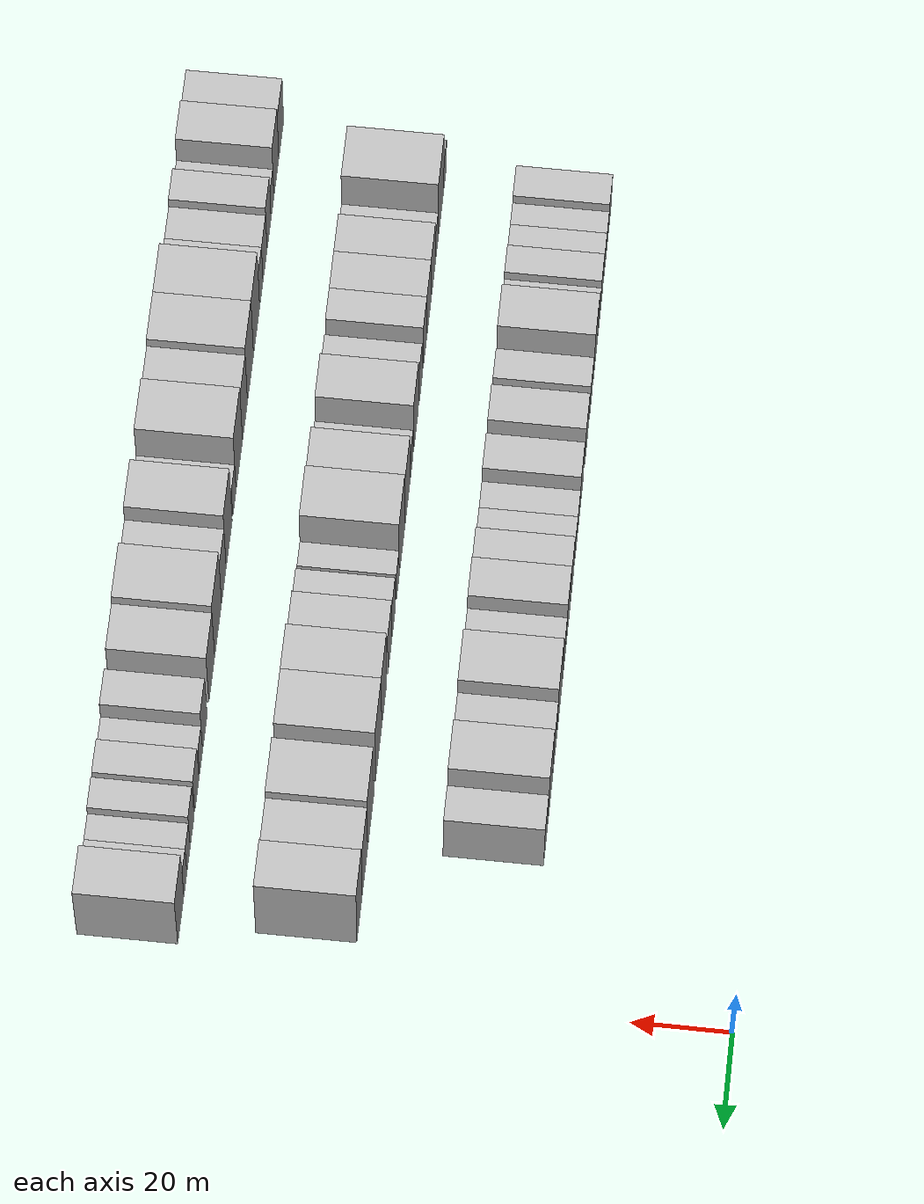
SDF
<sdf version="1.6">
 <world name="default">
  <model name="building_20">
   <static>1</static>
   <pose>50.0000 -176.2270 0 0.000000 0.000000 0.000000</pose>
   <link name="link">
    <pose>0 0 7.50 0 0 0</pose>
    <collision name="collision"><geometry><box><size>20.0000 7.1143 15.0000</size></box></geometry></collision>
    <visual name="visual">
     <cast_shadows>0</cast_shadows>
     <geometry><box><size>20.0000 7.1143 15.0000</size></box></geometry>
     <material>
      <script>
       <uri>model://HANNAS_wall/materials/scripts</uri>
       <uri>model://HANNAS_wall/materials/textures</uri>
       <name>vrc/HANNAS_wall</name>
      </script>
     </material>
    </visual>
   </link>
  </model>
  <model name="building_21">
   <static>1</static>
   <pose>50.0000 -170.1539 0 0.000000 0.000000 0.000000</pose>
   <link name="link">
    <pose>0 0 6.00 0 0 0</pose>
    <collision name="collision"><geometry><box><size>20.0000 5.0317 12.0000</size></box></geometry></collision>
    <visual name="visual">
     <cast_shadows>0</cast_shadows>
     <geometry><box><size>20.0000 5.0317 12.0000</size></box></geometry>
     <material>
      <script>
       <uri>model://HANNAS_wall/materials/scripts</uri>
       <uri>model://HANNAS_wall/materials/textures</uri>
       <name>vrc/HANNAS_wall</name>
      </script>
     </material>
    </visual>
   </link>
  </model>
  <model name="building_22">
   <static>1</static>
   <pose>50.0000 -164.9242 0 0.000000 0.000000 0.000000</pose>
   <link name="link">
    <pose>0 0 6.00 0 0 0</pose>
    <collision name="collision"><geometry><box><size>20.0000 5.4278 12.0000</size></box></geometry></collision>
    <visual name="visual">
     <cast_shadows>0</cast_shadows>
     <geometry><box><size>20.0000 5.4278 12.0000</size></box></geometry>
     <material>
      <script>
       <uri>model://HANNAS_wall/materials/scripts</uri>
       <uri>model://HANNAS_wall/materials/textures</uri>
       <name>vrc/HANNAS_wall</name>
      </script>
     </material>
    </visual>
   </link>
  </model>
  <model name="building_23">
   <static>1</static>
   <pose>50.0000 -158.0271 0 0.000000 0.000000 0.000000</pose>
   <link name="link">
    <pose>0 0 7.50 0 0 0</pose>
    <collision name="collision"><geometry><box><size>20.0000 6.3664 15.0000</size></box></geometry></collision>
    <visual name="visual">
     <cast_shadows>0</cast_shadows>
     <geometry><box><size>20.0000 6.3664 15.0000</size></box></geometry>
     <material>
      <script>
       <uri>model://HANNAS_wall/materials/scripts</uri>
       <uri>model://HANNAS_wall/materials/textures</uri>
       <name>vrc/HANNAS_wall</name>
      </script>
     </material>
    </visual>
   </link>
  </model>
  <model name="building_24">
   <static>1</static>
   <pose>50.0000 -151.8576 0 0.000000 0.000000 0.000000</pose>
   <link name="link">
    <pose>0 0 6.00 0 0 0</pose>
    <collision name="collision"><geometry><box><size>20.0000 5.9726 12.0000</size></box></geometry></collision>
    <visual name="visual">
     <cast_shadows>0</cast_shadows>
     <geometry><box><size>20.0000 5.9726 12.0000</size></box></geometry>
     <material>
      <script>
       <uri>model://HANNAS_wall/materials/scripts</uri>
       <uri>model://HANNAS_wall/materials/textures</uri>
       <name>vrc/HANNAS_wall</name>
      </script>
     </material>
    </visual>
   </link>
  </model>
  <model name="building_25">
   <static>1</static>
   <pose>50.0000 -144.0656 0 0.000000 0.000000 0.000000</pose>
   <link name="link">
    <pose>0 0 10.50 0 0 0</pose>
    <collision name="collision"><geometry><box><size>20.0000 9.6114 21.0000</size></box></geometry></collision>
    <visual name="visual">
     <cast_shadows>0</cast_shadows>
     <geometry><box><size>20.0000 9.6114 21.0000</size></box></geometry>
     <material>
      <script>
       <uri>model://HANNAS_wall/materials/scripts</uri>
       <uri>model://HANNAS_wall/materials/textures</uri>
       <name>vrc/HANNAS_wall</name>
      </script>
     </material>
    </visual>
   </link>
  </model>
  <model name="building_26">
   <static>1</static>
   <pose>50.0000 -133.8939 0 0.000000 0.000000 0.000000</pose>
   <link name="link">
    <pose>0 0 7.50 0 0 0</pose>
    <collision name="collision"><geometry><box><size>20.0000 6.7320 15.0000</size></box></geometry></collision>
    <visual name="visual">
     <cast_shadows>0</cast_shadows>
     <geometry><box><size>20.0000 6.7320 15.0000</size></box></geometry>
     <material>
      <script>
       <uri>model://HANNAS_wall/materials/scripts</uri>
       <uri>model://HANNAS_wall/materials/textures</uri>
       <name>vrc/HANNAS_wall</name>
      </script>
     </material>
    </visual>
   </link>
  </model>
  <model name="building_27">
   <static>1</static>
   <pose>50.0000 -123.4901 0 0.000000 0.000000 0.000000</pose>
   <link name="link">
    <pose>0 0 9.00 0 0 0</pose>
    <collision name="collision"><geometry><box><size>20.0000 8.0756 18.0000</size></box></geometry></collision>
    <visual name="visual">
     <cast_shadows>0</cast_shadows>
     <geometry><box><size>20.0000 8.0756 18.0000</size></box></geometry>
     <material>
      <script>
       <uri>model://HANNAS_wall/materials/scripts</uri>
       <uri>model://HANNAS_wall/materials/textures</uri>
       <name>vrc/HANNAS_wall</name>
      </script>
     </material>
    </visual>
   </link>
  </model>
  <model name="building_28">
   <static>1</static>
   <pose>50.0000 -112.4935 0 0.000000 0.000000 0.000000</pose>
   <link name="link">
    <pose>0 0 9.00 0 0 0</pose>
    <collision name="collision"><geometry><box><size>20.0000 7.9175 18.0000</size></box></geometry></collision>
    <visual name="visual">
     <cast_shadows>0</cast_shadows>
     <geometry><box><size>20.0000 7.9175 18.0000</size></box></geometry>
     <material>
      <script>
       <uri>model://HANNAS_wall/materials/scripts</uri>
       <uri>model://HANNAS_wall/materials/textures</uri>
       <name>vrc/HANNAS_wall</name>
      </script>
     </material>
    </visual>
   </link>
  </model>
  <model name="building_29">
   <static>1</static>
   <pose>50.0000 -105.5988 0 0.000000 0.000000 0.000000</pose>
   <link name="link">
    <pose>0 0 6.00 0 0 0</pose>
    <collision name="collision"><geometry><box><size>20.0000 5.8719 12.0000</size></box></geometry></collision>
    <visual name="visual">
     <cast_shadows>0</cast_shadows>
     <geometry><box><size>20.0000 5.8719 12.0000</size></box></geometry>
     <material>
      <script>
       <uri>model://HANNAS_wall/materials/scripts</uri>
       <uri>model://HANNAS_wall/materials/textures</uri>
       <name>vrc/HANNAS_wall</name>
      </script>
     </material>
    </visual>
   </link>
  </model>
  <model name="building_30">
   <static>1</static>
   <pose>50.0000 -99.9868 0 0.000000 0.000000 0.000000</pose>
   <link name="link">
    <pose>0 0 6.00 0 0 0</pose>
    <collision name="collision"><geometry><box><size>20.0000 5.3522 12.0000</size></box></geometry></collision>
    <visual name="visual">
     <cast_shadows>0</cast_shadows>
     <geometry><box><size>20.0000 5.3522 12.0000</size></box></geometry>
     <material>
      <script>
       <uri>model://HANNAS_wall/materials/scripts</uri>
       <uri>model://HANNAS_wall/materials/textures</uri>
       <name>vrc/HANNAS_wall</name>
      </script>
     </material>
    </visual>
   </link>
  </model>
  <model name="building_31">
   <static>1</static>
   <pose>50.0000 -91.3105 0 0.000000 0.000000 0.000000</pose>
   <link name="link">
    <pose>0 0 9.00 0 0 0</pose>
    <collision name="collision"><geometry><box><size>20.0000 8.0003 18.0000</size></box></geometry></collision>
    <visual name="visual">
     <cast_shadows>0</cast_shadows>
     <geometry><box><size>20.0000 8.0003 18.0000</size></box></geometry>
     <material>
      <script>
       <uri>model://HANNAS_wall/materials/scripts</uri>
       <uri>model://HANNAS_wall/materials/textures</uri>
       <name>vrc/HANNAS_wall</name>
      </script>
     </material>
    </visual>
   </link>
  </model>
  <model name="building_32">
   <static>1</static>
   <pose>50.0000 -83.0380 0 0.000000 0.000000 0.000000</pose>
   <link name="link">
    <pose>0 0 10.50 0 0 0</pose>
    <collision name="collision"><geometry><box><size>20.0000 8.5449 21.0000</size></box></geometry></collision>
    <visual name="visual">
     <cast_shadows>0</cast_shadows>
     <geometry><box><size>20.0000 8.5449 21.0000</size></box></geometry>
     <material>
      <script>
       <uri>model://HANNAS_wall/materials/scripts</uri>
       <uri>model://HANNAS_wall/materials/textures</uri>
       <name>vrc/HANNAS_wall</name>
      </script>
     </material>
    </visual>
   </link>
  </model>
  <model name="building_33">
   <static>1</static>
   <pose>50.0000 -75.3986 0 0.000000 0.000000 0.000000</pose>
   <link name="link">
    <pose>0 0 7.50 0 0 0</pose>
    <collision name="collision"><geometry><box><size>20.0000 6.7339 15.0000</size></box></geometry></collision>
    <visual name="visual">
     <cast_shadows>0</cast_shadows>
     <geometry><box><size>20.0000 6.7339 15.0000</size></box></geometry>
     <material>
      <script>
       <uri>model://HANNAS_wall/materials/scripts</uri>
       <uri>model://HANNAS_wall/materials/textures</uri>
       <name>vrc/HANNAS_wall</name>
      </script>
     </material>
    </visual>
   </link>
  </model>
  <model name="building_34">
   <static>1</static>
   <pose>50.0000 -64.4843 0 0.000000 0.000000 0.000000</pose>
   <link name="link">
    <pose>0 0 12.00 0 0 0</pose>
    <collision name="collision"><geometry><box><size>20.0000 11.0947 24.0000</size></box></geometry></collision>
    <visual name="visual">
     <cast_shadows>0</cast_shadows>
     <geometry><box><size>20.0000 11.0947 24.0000</size></box></geometry>
     <material>
      <script>
       <uri>model://HANNAS_wall/materials/scripts</uri>
       <uri>model://HANNAS_wall/materials/textures</uri>
       <name>vrc/HANNAS_wall</name>
      </script>
     </material>
    </visual>
   </link>
  </model>
  <model name="building_35">
   <static>1</static>
   <pose>50.0000 -54.6531 0 0.000000 0.000000 0.000000</pose>
   <link name="link">
    <pose>0 0 9.00 0 0 0</pose>
    <collision name="collision"><geometry><box><size>20.0000 8.5675 18.0000</size></box></geometry></collision>
    <visual name="visual">
     <cast_shadows>0</cast_shadows>
     <geometry><box><size>20.0000 8.5675 18.0000</size></box></geometry>
     <material>
      <script>
       <uri>model://HANNAS_wall/materials/scripts</uri>
       <uri>model://HANNAS_wall/materials/textures</uri>
       <name>vrc/HANNAS_wall</name>
      </script>
     </material>
    </visual>
   </link>
  </model>
  <model name="building_36">
   <static>1</static>
   <pose>50.0000 -45.1233 0 0.000000 0.000000 0.000000</pose>
   <link name="link">
    <pose>0 0 12.00 0 0 0</pose>
    <collision name="collision"><geometry><box><size>20.0000 10.4921 24.0000</size></box></geometry></collision>
    <visual name="visual">
     <cast_shadows>0</cast_shadows>
     <geometry><box><size>20.0000 10.4921 24.0000</size></box></geometry>
     <material>
      <script>
       <uri>model://HANNAS_wall/materials/scripts</uri>
       <uri>model://HANNAS_wall/materials/textures</uri>
       <name>vrc/HANNAS_wall</name>
      </script>
     </material>
    </visual>
   </link>
  </model>
  <model name="building_37">
   <static>1</static>
   <pose>50.0000 -35.1393 0 0.000000 0.000000 0.000000</pose>
   <link name="link">
    <pose>0 0 9.00 0 0 0</pose>
    <collision name="collision"><geometry><box><size>20.0000 7.4760 18.0000</size></box></geometry></collision>
    <visual name="visual">
     <cast_shadows>0</cast_shadows>
     <geometry><box><size>20.0000 7.4760 18.0000</size></box></geometry>
     <material>
      <script>
       <uri>model://HANNAS_wall/materials/scripts</uri>
       <uri>model://HANNAS_wall/materials/textures</uri>
       <name>vrc/HANNAS_wall</name>
      </script>
     </material>
    </visual>
   </link>
  </model>
  <model name="building_98">
   <static>1</static>
   <pose>85.0000 -183.1922 0 0.000000 0.000000 0.000000</pose>
   <link name="link">
    <pose>0 0 6.00 0 0 0</pose>
    <collision name="collision"><geometry><box><size>20.0000 5.4595 12.0000</size></box></geometry></collision>
    <visual name="visual">
     <cast_shadows>0</cast_shadows>
     <geometry><box><size>20.0000 5.4595 12.0000</size></box></geometry>
     <material>
      <script>
       <uri>model://HANNAS_wall/materials/scripts</uri>
       <uri>model://HANNAS_wall/materials/textures</uri>
       <name>vrc/HANNAS_wall</name>
      </script>
     </material>
    </visual>
   </link>
  </model>
  <model name="building_99">
   <static>1</static>
   <pose>85.0000 -174.5851 0 0.000000 0.000000 0.000000</pose>
   <link name="link">
    <pose>0 0 12.00 0 0 0</pose>
    <collision name="collision"><geometry><box><size>20.0000 11.7548 24.0000</size></box></geometry></collision>
    <visual name="visual">
     <cast_shadows>0</cast_shadows>
     <geometry><box><size>20.0000 11.7548 24.0000</size></box></geometry>
     <material>
      <script>
       <uri>model://HANNAS_wall/materials/scripts</uri>
       <uri>model://HANNAS_wall/materials/textures</uri>
       <name>vrc/HANNAS_wall</name>
      </script>
     </material>
    </visual>
   </link>
  </model>
  <model name="building_100">
   <static>1</static>
   <pose>85.0000 -165.9153 0 0.000000 0.000000 0.000000</pose>
   <link name="link">
    <pose>0 0 6.00 0 0 0</pose>
    <collision name="collision"><geometry><box><size>20.0000 5.5848 12.0000</size></box></geometry></collision>
    <visual name="visual">
     <cast_shadows>0</cast_shadows>
     <geometry><box><size>20.0000 5.5848 12.0000</size></box></geometry>
     <material>
      <script>
       <uri>model://HANNAS_wall/materials/scripts</uri>
       <uri>model://HANNAS_wall/materials/textures</uri>
       <name>vrc/HANNAS_wall</name>
      </script>
     </material>
    </visual>
   </link>
  </model>
  <model name="building_101">
   <static>1</static>
   <pose>85.0000 -158.8045 0 0.000000 0.000000 0.000000</pose>
   <link name="link">
    <pose>0 0 9.00 0 0 0</pose>
    <collision name="collision"><geometry><box><size>20.0000 8.6369 18.0000</size></box></geometry></collision>
    <visual name="visual">
     <cast_shadows>0</cast_shadows>
     <geometry><box><size>20.0000 8.6369 18.0000</size></box></geometry>
     <material>
      <script>
       <uri>model://HANNAS_wall/materials/scripts</uri>
       <uri>model://HANNAS_wall/materials/textures</uri>
       <name>vrc/HANNAS_wall</name>
      </script>
     </material>
    </visual>
   </link>
  </model>
  <model name="building_102">
   <static>1</static>
   <pose>85.0000 -150.2253 0 0.000000 0.000000 0.000000</pose>
   <link name="link">
    <pose>0 0 9.00 0 0 0</pose>
    <collision name="collision"><geometry><box><size>20.0000 8.5214 18.0000</size></box></geometry></collision>
    <visual name="visual">
     <cast_shadows>0</cast_shadows>
     <geometry><box><size>20.0000 8.5214 18.0000</size></box></geometry>
     <material>
      <script>
       <uri>model://HANNAS_wall/materials/scripts</uri>
       <uri>model://HANNAS_wall/materials/textures</uri>
       <name>vrc/HANNAS_wall</name>
      </script>
     </material>
    </visual>
   </link>
  </model>
  <model name="building_103">
   <static>1</static>
   <pose>85.0000 -142.3640 0 0.000000 0.000000 0.000000</pose>
   <link name="link">
    <pose>0 0 9.00 0 0 0</pose>
    <collision name="collision"><geometry><box><size>20.0000 7.2013 18.0000</size></box></geometry></collision>
    <visual name="visual">
     <cast_shadows>0</cast_shadows>
     <geometry><box><size>20.0000 7.2013 18.0000</size></box></geometry>
     <material>
      <script>
       <uri>model://HANNAS_wall/materials/scripts</uri>
       <uri>model://HANNAS_wall/materials/textures</uri>
       <name>vrc/HANNAS_wall</name>
      </script>
     </material>
    </visual>
   </link>
  </model>
  <model name="building_104">
   <static>1</static>
   <pose>85.0000 -133.5489 0 0.000000 0.000000 0.000000</pose>
   <link name="link">
    <pose>0 0 7.50 0 0 0</pose>
    <collision name="collision"><geometry><box><size>20.0000 6.4290 15.0000</size></box></geometry></collision>
    <visual name="visual">
     <cast_shadows>0</cast_shadows>
     <geometry><box><size>20.0000 6.4290 15.0000</size></box></geometry>
     <material>
      <script>
       <uri>model://HANNAS_wall/materials/scripts</uri>
       <uri>model://HANNAS_wall/materials/textures</uri>
       <name>vrc/HANNAS_wall</name>
      </script>
     </material>
    </visual>
   </link>
  </model>
  <model name="building_105">
   <static>1</static>
   <pose>85.0000 -124.4201 0 0.000000 0.000000 0.000000</pose>
   <link name="link">
    <pose>0 0 10.50 0 0 0</pose>
    <collision name="collision"><geometry><box><size>20.0000 9.8286 21.0000</size></box></geometry></collision>
    <visual name="visual">
     <cast_shadows>0</cast_shadows>
     <geometry><box><size>20.0000 9.8286 21.0000</size></box></geometry>
     <material>
      <script>
       <uri>model://HANNAS_wall/materials/scripts</uri>
       <uri>model://HANNAS_wall/materials/textures</uri>
       <name>vrc/HANNAS_wall</name>
      </script>
     </material>
    </visual>
   </link>
  </model>
  <model name="building_106">
   <static>1</static>
   <pose>85.0000 -116.0690 0 0.000000 0.000000 0.000000</pose>
   <link name="link">
    <pose>0 0 6.00 0 0 0</pose>
    <collision name="collision"><geometry><box><size>20.0000 4.8735 12.0000</size></box></geometry></collision>
    <visual name="visual">
     <cast_shadows>0</cast_shadows>
     <geometry><box><size>20.0000 4.8735 12.0000</size></box></geometry>
     <material>
      <script>
       <uri>model://HANNAS_wall/materials/scripts</uri>
       <uri>model://HANNAS_wall/materials/textures</uri>
       <name>vrc/HANNAS_wall</name>
      </script>
     </material>
    </visual>
   </link>
  </model>
  <model name="building_107">
   <static>1</static>
   <pose>85.0000 -107.5841 0 0.000000 0.000000 0.000000</pose>
   <link name="link">
    <pose>0 0 10.50 0 0 0</pose>
    <collision name="collision"><geometry><box><size>20.0000 10.0961 21.0000</size></box></geometry></collision>
    <visual name="visual">
     <cast_shadows>0</cast_shadows>
     <geometry><box><size>20.0000 10.0961 21.0000</size></box></geometry>
     <material>
      <script>
       <uri>model://HANNAS_wall/materials/scripts</uri>
       <uri>model://HANNAS_wall/materials/textures</uri>
       <name>vrc/HANNAS_wall</name>
      </script>
     </material>
    </visual>
   </link>
  </model>
  <model name="building_108">
   <static>1</static>
   <pose>85.0000 -96.9487 0 0.000000 0.000000 0.000000</pose>
   <link name="link">
    <pose>0 0 12.00 0 0 0</pose>
    <collision name="collision"><geometry><box><size>20.0000 11.1748 24.0000</size></box></geometry></collision>
    <visual name="visual">
     <cast_shadows>0</cast_shadows>
     <geometry><box><size>20.0000 11.1748 24.0000</size></box></geometry>
     <material>
      <script>
       <uri>model://HANNAS_wall/materials/scripts</uri>
       <uri>model://HANNAS_wall/materials/textures</uri>
       <name>vrc/HANNAS_wall</name>
      </script>
     </material>
    </visual>
   </link>
  </model>
  <model name="building_109">
   <static>1</static>
   <pose>85.0000 -88.6468 0 0.000000 0.000000 0.000000</pose>
   <link name="link">
    <pose>0 0 6.00 0 0 0</pose>
    <collision name="collision"><geometry><box><size>20.0000 5.4288 12.0000</size></box></geometry></collision>
    <visual name="visual">
     <cast_shadows>0</cast_shadows>
     <geometry><box><size>20.0000 5.4288 12.0000</size></box></geometry>
     <material>
      <script>
       <uri>model://HANNAS_wall/materials/scripts</uri>
       <uri>model://HANNAS_wall/materials/textures</uri>
       <name>vrc/HANNAS_wall</name>
      </script>
     </material>
    </visual>
   </link>
  </model>
  <model name="building_110">
   <static>1</static>
   <pose>85.0000 -80.7340 0 0.000000 0.000000 0.000000</pose>
   <link name="link">
    <pose>0 0 7.50 0 0 0</pose>
    <collision name="collision"><geometry><box><size>20.0000 6.3970 15.0000</size></box></geometry></collision>
    <visual name="visual">
     <cast_shadows>0</cast_shadows>
     <geometry><box><size>20.0000 6.3970 15.0000</size></box></geometry>
     <material>
      <script>
       <uri>model://HANNAS_wall/materials/scripts</uri>
       <uri>model://HANNAS_wall/materials/textures</uri>
       <name>vrc/HANNAS_wall</name>
      </script>
     </material>
    </visual>
   </link>
  </model>
  <model name="building_111">
   <static>1</static>
   <pose>85.0000 -73.5299 0 0.000000 0.000000 0.000000</pose>
   <link name="link">
    <pose>0 0 9.00 0 0 0</pose>
    <collision name="collision"><geometry><box><size>20.0000 8.0112 18.0000</size></box></geometry></collision>
    <visual name="visual">
     <cast_shadows>0</cast_shadows>
     <geometry><box><size>20.0000 8.0112 18.0000</size></box></geometry>
     <material>
      <script>
       <uri>model://HANNAS_wall/materials/scripts</uri>
       <uri>model://HANNAS_wall/materials/textures</uri>
       <name>vrc/HANNAS_wall</name>
      </script>
     </material>
    </visual>
   </link>
  </model>
  <model name="building_112">
   <static>1</static>
   <pose>85.0000 -62.6601 0 0.000000 0.000000 0.000000</pose>
   <link name="link">
    <pose>0 0 12.00 0 0 0</pose>
    <collision name="collision"><geometry><box><size>20.0000 9.7285 24.0000</size></box></geometry></collision>
    <visual name="visual">
     <cast_shadows>0</cast_shadows>
     <geometry><box><size>20.0000 9.7285 24.0000</size></box></geometry>
     <material>
      <script>
       <uri>model://HANNAS_wall/materials/scripts</uri>
       <uri>model://HANNAS_wall/materials/textures</uri>
       <name>vrc/HANNAS_wall</name>
      </script>
     </material>
    </visual>
   </link>
  </model>
  <model name="building_113">
   <static>1</static>
   <pose>85.0000 -51.8516 0 0.000000 0.000000 0.000000</pose>
   <link name="link">
    <pose>0 0 12.00 0 0 0</pose>
    <collision name="collision"><geometry><box><size>20.0000 11.8883 24.0000</size></box></geometry></collision>
    <visual name="visual">
     <cast_shadows>0</cast_shadows>
     <geometry><box><size>20.0000 11.8883 24.0000</size></box></geometry>
     <material>
      <script>
       <uri>model://HANNAS_wall/materials/scripts</uri>
       <uri>model://HANNAS_wall/materials/textures</uri>
       <name>vrc/HANNAS_wall</name>
      </script>
     </material>
    </visual>
   </link>
  </model>
  <model name="building_114">
   <static>1</static>
   <pose>85.0000 -37.0920 0 0.000000 0.000000 0.000000</pose>
   <link name="link">
    <pose>0 0 12.00 0 0 0</pose>
    <collision name="collision"><geometry><box><size>20.0000 11.6309 24.0000</size></box></geometry></collision>
    <visual name="visual">
     <cast_shadows>0</cast_shadows>
     <geometry><box><size>20.0000 11.6309 24.0000</size></box></geometry>
     <material>
      <script>
       <uri>model://HANNAS_wall/materials/scripts</uri>
       <uri>model://HANNAS_wall/materials/textures</uri>
       <name>vrc/HANNAS_wall</name>
      </script>
     </material>
    </visual>
   </link>
  </model>
  <model name="building_115">
   <static>1</static>
   <pose>85.0000 -26.1846 0 0.000000 0.000000 0.000000</pose>
   <link name="link">
    <pose>0 0 10.50 0 0 0</pose>
    <collision name="collision"><geometry><box><size>20.0000 10.1840 21.0000</size></box></geometry></collision>
    <visual name="visual">
     <cast_shadows>0</cast_shadows>
     <geometry><box><size>20.0000 10.1840 21.0000</size></box></geometry>
     <material>
      <script>
       <uri>model://HANNAS_wall/materials/scripts</uri>
       <uri>model://HANNAS_wall/materials/textures</uri>
       <name>vrc/HANNAS_wall</name>
      </script>
     </material>
    </visual>
   </link>
  </model>
  <model name="building_116">
   <static>1</static>
   <pose>85.0000 -16.1854 0 0.000000 0.000000 0.000000</pose>
   <link name="link">
    <pose>0 0 12.00 0 0 0</pose>
    <collision name="collision"><geometry><box><size>20.0000 9.8144 24.0000</size></box></geometry></collision>
    <visual name="visual">
     <cast_shadows>0</cast_shadows>
     <geometry><box><size>20.0000 9.8144 24.0000</size></box></geometry>
     <material>
      <script>
       <uri>model://HANNAS_wall/materials/scripts</uri>
       <uri>model://HANNAS_wall/materials/textures</uri>
       <name>vrc/HANNAS_wall</name>
      </script>
     </material>
    </visual>
   </link>
  </model>
  <model name="building_174">
   <static>1</static>
   <pose>120.0000 -189.0000 0 0.000000 0.000000 0.000000</pose>
   <link name="link">
    <pose>0 0 9.00 0 0 0</pose>
    <collision name="collision"><geometry><box><size>20.0000 8.9581 18.0000</size></box></geometry></collision>
    <visual name="visual">
     <cast_shadows>0</cast_shadows>
     <geometry><box><size>20.0000 8.9581 18.0000</size></box></geometry>
     <material>
      <script>
       <uri>model://HANNAS_wall/materials/scripts</uri>
       <uri>model://HANNAS_wall/materials/textures</uri>
       <name>vrc/HANNAS_wall</name>
      </script>
     </material>
    </visual>
   </link>
  </model>
  <model name="building_175">
   <static>1</static>
   <pose>120.0000 -179.9455 0 0.000000 0.000000 0.000000</pose>
   <link name="link">
    <pose>0 0 10.50 0 0 0</pose>
    <collision name="collision"><geometry><box><size>20.0000 9.1510 21.0000</size></box></geometry></collision>
    <visual name="visual">
     <cast_shadows>0</cast_shadows>
     <geometry><box><size>20.0000 9.1510 21.0000</size></box></geometry>
     <material>
      <script>
       <uri>model://HANNAS_wall/materials/scripts</uri>
       <uri>model://HANNAS_wall/materials/textures</uri>
       <name>vrc/HANNAS_wall</name>
      </script>
     </material>
    </visual>
   </link>
  </model>
  <model name="building_176">
   <static>1</static>
   <pose>120.0000 -172.7316 0 0.000000 0.000000 0.000000</pose>
   <link name="link">
    <pose>0 0 6.00 0 0 0</pose>
    <collision name="collision"><geometry><box><size>20.0000 5.2768 12.0000</size></box></geometry></collision>
    <visual name="visual">
     <cast_shadows>0</cast_shadows>
     <geometry><box><size>20.0000 5.2768 12.0000</size></box></geometry>
     <material>
      <script>
       <uri>model://HANNAS_wall/materials/scripts</uri>
       <uri>model://HANNAS_wall/materials/textures</uri>
       <name>vrc/HANNAS_wall</name>
      </script>
     </material>
    </visual>
   </link>
  </model>
  <model name="building_177">
   <static>1</static>
   <pose>120.0000 -166.4682 0 0.000000 0.000000 0.000000</pose>
   <link name="link">
    <pose>0 0 9.00 0 0 0</pose>
    <collision name="collision"><geometry><box><size>20.0000 7.2499 18.0000</size></box></geometry></collision>
    <visual name="visual">
     <cast_shadows>0</cast_shadows>
     <geometry><box><size>20.0000 7.2499 18.0000</size></box></geometry>
     <material>
      <script>
       <uri>model://HANNAS_wall/materials/scripts</uri>
       <uri>model://HANNAS_wall/materials/textures</uri>
       <name>vrc/HANNAS_wall</name>
      </script>
     </material>
    </visual>
   </link>
  </model>
  <model name="building_178">
   <static>1</static>
   <pose>120.0000 -159.1208 0 0.000000 0.000000 0.000000</pose>
   <link name="link">
    <pose>0 0 7.50 0 0 0</pose>
    <collision name="collision"><geometry><box><size>20.0000 7.4450 15.0000</size></box></geometry></collision>
    <visual name="visual">
     <cast_shadows>0</cast_shadows>
     <geometry><box><size>20.0000 7.4450 15.0000</size></box></geometry>
     <material>
      <script>
       <uri>model://HANNAS_wall/materials/scripts</uri>
       <uri>model://HANNAS_wall/materials/textures</uri>
       <name>vrc/HANNAS_wall</name>
      </script>
     </material>
    </visual>
   </link>
  </model>
  <model name="building_179">
   <static>1</static>
   <pose>120.0000 -152.3688 0 0.000000 0.000000 0.000000</pose>
   <link name="link">
    <pose>0 0 7.50 0 0 0</pose>
    <collision name="collision"><geometry><box><size>20.0000 6.0590 15.0000</size></box></geometry></collision>
    <visual name="visual">
     <cast_shadows>0</cast_shadows>
     <geometry><box><size>20.0000 6.0590 15.0000</size></box></geometry>
     <material>
      <script>
       <uri>model://HANNAS_wall/materials/scripts</uri>
       <uri>model://HANNAS_wall/materials/textures</uri>
       <name>vrc/HANNAS_wall</name>
      </script>
     </material>
    </visual>
   </link>
  </model>
  <model name="building_180">
   <static>1</static>
   <pose>120.0000 -143.7776 0 0.000000 0.000000 0.000000</pose>
   <link name="link">
    <pose>0 0 12.00 0 0 0</pose>
    <collision name="collision"><geometry><box><size>20.0000 11.1234 24.0000</size></box></geometry></collision>
    <visual name="visual">
     <cast_shadows>0</cast_shadows>
     <geometry><box><size>20.0000 11.1234 24.0000</size></box></geometry>
     <material>
      <script>
       <uri>model://HANNAS_wall/materials/scripts</uri>
       <uri>model://HANNAS_wall/materials/textures</uri>
       <name>vrc/HANNAS_wall</name>
      </script>
     </material>
    </visual>
   </link>
  </model>
  <model name="building_181">
   <static>1</static>
   <pose>120.0000 -132.7853 0 0.000000 0.000000 0.000000</pose>
   <link name="link">
    <pose>0 0 12.00 0 0 0</pose>
    <collision name="collision"><geometry><box><size>20.0000 10.8613 24.0000</size></box></geometry></collision>
    <visual name="visual">
     <cast_shadows>0</cast_shadows>
     <geometry><box><size>20.0000 10.8613 24.0000</size></box></geometry>
     <material>
      <script>
       <uri>model://HANNAS_wall/materials/scripts</uri>
       <uri>model://HANNAS_wall/materials/textures</uri>
       <name>vrc/HANNAS_wall</name>
      </script>
     </material>
    </visual>
   </link>
  </model>
  <model name="building_182">
   <static>1</static>
   <pose>120.0000 -122.9130 0 0.000000 0.000000 0.000000</pose>
   <link name="link">
    <pose>0 0 10.50 0 0 0</pose>
    <collision name="collision"><geometry><box><size>20.0000 8.8831 21.0000</size></box></geometry></collision>
    <visual name="visual">
     <cast_shadows>0</cast_shadows>
     <geometry><box><size>20.0000 8.8831 21.0000</size></box></geometry>
     <material>
      <script>
       <uri>model://HANNAS_wall/materials/scripts</uri>
       <uri>model://HANNAS_wall/materials/textures</uri>
       <name>vrc/HANNAS_wall</name>
      </script>
     </material>
    </visual>
   </link>
  </model>
  <model name="building_183">
   <static>1</static>
   <pose>120.0000 -112.7525 0 0.000000 0.000000 0.000000</pose>
   <link name="link">
    <pose>0 0 12.00 0 0 0</pose>
    <collision name="collision"><geometry><box><size>20.0000 11.4379 24.0000</size></box></geometry></collision>
    <visual name="visual">
     <cast_shadows>0</cast_shadows>
     <geometry><box><size>20.0000 11.4379 24.0000</size></box></geometry>
     <material>
      <script>
       <uri>model://HANNAS_wall/materials/scripts</uri>
       <uri>model://HANNAS_wall/materials/textures</uri>
       <name>vrc/HANNAS_wall</name>
      </script>
     </material>
    </visual>
   </link>
  </model>
  <model name="building_184">
   <static>1</static>
   <pose>120.0000 -104.1078 0 0.000000 0.000000 0.000000</pose>
   <link name="link">
    <pose>0 0 6.00 0 0 0</pose>
    <collision name="collision"><geometry><box><size>20.0000 5.8516 12.0000</size></box></geometry></collision>
    <visual name="visual">
     <cast_shadows>0</cast_shadows>
     <geometry><box><size>20.0000 5.8516 12.0000</size></box></geometry>
     <material>
      <script>
       <uri>model://HANNAS_wall/materials/scripts</uri>
       <uri>model://HANNAS_wall/materials/textures</uri>
       <name>vrc/HANNAS_wall</name>
      </script>
     </material>
    </visual>
   </link>
  </model>
  <model name="building_185">
   <static>1</static>
   <pose>120.0000 -94.9183 0 0.000000 0.000000 0.000000</pose>
   <link name="link">
    <pose>0 0 12.00 0 0 0</pose>
    <collision name="collision"><geometry><box><size>20.0000 10.5272 24.0000</size></box></geometry></collision>
    <visual name="visual">
     <cast_shadows>0</cast_shadows>
     <geometry><box><size>20.0000 10.5272 24.0000</size></box></geometry>
     <material>
      <script>
       <uri>model://HANNAS_wall/materials/scripts</uri>
       <uri>model://HANNAS_wall/materials/textures</uri>
       <name>vrc/HANNAS_wall</name>
      </script>
     </material>
    </visual>
   </link>
  </model>
  <model name="building_186">
   <static>1</static>
   <pose>120.0000 -85.6438 0 0.000000 0.000000 0.000000</pose>
   <link name="link">
    <pose>0 0 9.00 0 0 0</pose>
    <collision name="collision"><geometry><box><size>20.0000 8.0219 18.0000</size></box></geometry></collision>
    <visual name="visual">
     <cast_shadows>0</cast_shadows>
     <geometry><box><size>20.0000 8.0219 18.0000</size></box></geometry>
     <material>
      <script>
       <uri>model://HANNAS_wall/materials/scripts</uri>
       <uri>model://HANNAS_wall/materials/textures</uri>
       <name>vrc/HANNAS_wall</name>
      </script>
     </material>
    </visual>
   </link>
  </model>
  <model name="building_187">
   <static>1</static>
   <pose>120.0000 -75.6839 0 0.000000 0.000000 0.000000</pose>
   <link name="link">
    <pose>0 0 12.00 0 0 0</pose>
    <collision name="collision"><geometry><box><size>20.0000 11.8979 24.0000</size></box></geometry></collision>
    <visual name="visual">
     <cast_shadows>0</cast_shadows>
     <geometry><box><size>20.0000 11.8979 24.0000</size></box></geometry>
     <material>
      <script>
       <uri>model://HANNAS_wall/materials/scripts</uri>
       <uri>model://HANNAS_wall/materials/textures</uri>
       <name>vrc/HANNAS_wall</name>
      </script>
     </material>
    </visual>
   </link>
  </model>
  <model name="building_188">
   <static>1</static>
   <pose>120.0000 -64.7517 0 0.000000 0.000000 0.000000</pose>
   <link name="link">
    <pose>0 0 10.50 0 0 0</pose>
    <collision name="collision"><geometry><box><size>20.0000 9.9666 21.0000</size></box></geometry></collision>
    <visual name="visual">
     <cast_shadows>0</cast_shadows>
     <geometry><box><size>20.0000 9.9666 21.0000</size></box></geometry>
     <material>
      <script>
       <uri>model://HANNAS_wall/materials/scripts</uri>
       <uri>model://HANNAS_wall/materials/textures</uri>
       <name>vrc/HANNAS_wall</name>
      </script>
     </material>
    </visual>
   </link>
  </model>
  <model name="building_189">
   <static>1</static>
   <pose>120.0000 -52.9093 0 0.000000 0.000000 0.000000</pose>
   <link name="link">
    <pose>0 0 9.00 0 0 0</pose>
    <collision name="collision"><geometry><box><size>20.0000 7.7180 18.0000</size></box></geometry></collision>
    <visual name="visual">
     <cast_shadows>0</cast_shadows>
     <geometry><box><size>20.0000 7.7180 18.0000</size></box></geometry>
     <material>
      <script>
       <uri>model://HANNAS_wall/materials/scripts</uri>
       <uri>model://HANNAS_wall/materials/textures</uri>
       <name>vrc/HANNAS_wall</name>
      </script>
     </material>
    </visual>
   </link>
  </model>
  <model name="building_190">
   <static>1</static>
   <pose>120.0000 -46.4521 0 0.000000 0.000000 0.000000</pose>
   <link name="link">
    <pose>0 0 6.00 0 0 0</pose>
    <collision name="collision"><geometry><box><size>20.0000 5.1964 12.0000</size></box></geometry></collision>
    <visual name="visual">
     <cast_shadows>0</cast_shadows>
     <geometry><box><size>20.0000 5.1964 12.0000</size></box></geometry>
     <material>
      <script>
       <uri>model://HANNAS_wall/materials/scripts</uri>
       <uri>model://HANNAS_wall/materials/textures</uri>
       <name>vrc/HANNAS_wall</name>
      </script>
     </material>
    </visual>
   </link>
  </model>
  <model name="building_191">
   <static>1</static>
   <pose>120.0000 -39.2722 0 0.000000 0.000000 0.000000</pose>
   <link name="link">
    <pose>0 0 7.50 0 0 0</pose>
    <collision name="collision"><geometry><box><size>20.0000 7.1636 15.0000</size></box></geometry></collision>
    <visual name="visual">
     <cast_shadows>0</cast_shadows>
     <geometry><box><size>20.0000 7.1636 15.0000</size></box></geometry>
     <material>
      <script>
       <uri>model://HANNAS_wall/materials/scripts</uri>
       <uri>model://HANNAS_wall/materials/textures</uri>
       <name>vrc/HANNAS_wall</name>
      </script>
     </material>
    </visual>
   </link>
  </model>
  <model name="building_192">
   <static>1</static>
   <pose>120.0000 -31.4030 0 0.000000 0.000000 0.000000</pose>
   <link name="link">
    <pose>0 0 7.50 0 0 0</pose>
    <collision name="collision"><geometry><box><size>20.0000 6.5748 15.0000</size></box></geometry></collision>
    <visual name="visual">
     <cast_shadows>0</cast_shadows>
     <geometry><box><size>20.0000 6.5748 15.0000</size></box></geometry>
     <material>
      <script>
       <uri>model://HANNAS_wall/materials/scripts</uri>
       <uri>model://HANNAS_wall/materials/textures</uri>
       <name>vrc/HANNAS_wall</name>
      </script>
     </material>
    </visual>
   </link>
  </model>
  <model name="building_193">
   <static>1</static>
   <pose>120.0000 -25.3488 0 0.000000 0.000000 0.000000</pose>
   <link name="link">
    <pose>0 0 6.00 0 0 0</pose>
    <collision name="collision"><geometry><box><size>20.0000 5.5336 12.0000</size></box></geometry></collision>
    <visual name="visual">
     <cast_shadows>0</cast_shadows>
     <geometry><box><size>20.0000 5.5336 12.0000</size></box></geometry>
     <material>
      <script>
       <uri>model://HANNAS_wall/materials/scripts</uri>
       <uri>model://HANNAS_wall/materials/textures</uri>
       <name>vrc/HANNAS_wall</name>
      </script>
     </material>
    </visual>
   </link>
  </model>
  <model name="building_194">
   <static>1</static>
   <pose>120.0000 -20.0489 0 0.000000 0.000000 0.000000</pose>
   <link name="link">
    <pose>0 0 6.00 0 0 0</pose>
    <collision name="collision"><geometry><box><size>20.0000 5.0662 12.0000</size></box></geometry></collision>
    <visual name="visual">
     <cast_shadows>0</cast_shadows>
     <geometry><box><size>20.0000 5.0662 12.0000</size></box></geometry>
     <material>
      <script>
       <uri>model://HANNAS_wall/materials/scripts</uri>
       <uri>model://HANNAS_wall/materials/textures</uri>
       <name>vrc/HANNAS_wall</name>
      </script>
     </material>
    </visual>
   </link>
  </model>
  <model name="building_195">
   <static>1</static>
   <pose>120.0000 -12.4364 0 0.000000 0.000000 0.000000</pose>
   <link name="link">
    <pose>0 0 10.50 0 0 0</pose>
    <collision name="collision"><geometry><box><size>20.0000 10.1589 21.0000</size></box></geometry></collision>
    <visual name="visual">
     <cast_shadows>0</cast_shadows>
     <geometry><box><size>20.0000 10.1589 21.0000</size></box></geometry>
     <material>
      <script>
       <uri>model://HANNAS_wall/materials/scripts</uri>
       <uri>model://HANNAS_wall/materials/textures</uri>
       <name>vrc/HANNAS_wall</name>
      </script>
     </material>
    </visual>
   </link>
  </model>
 </world>
</sdf>
